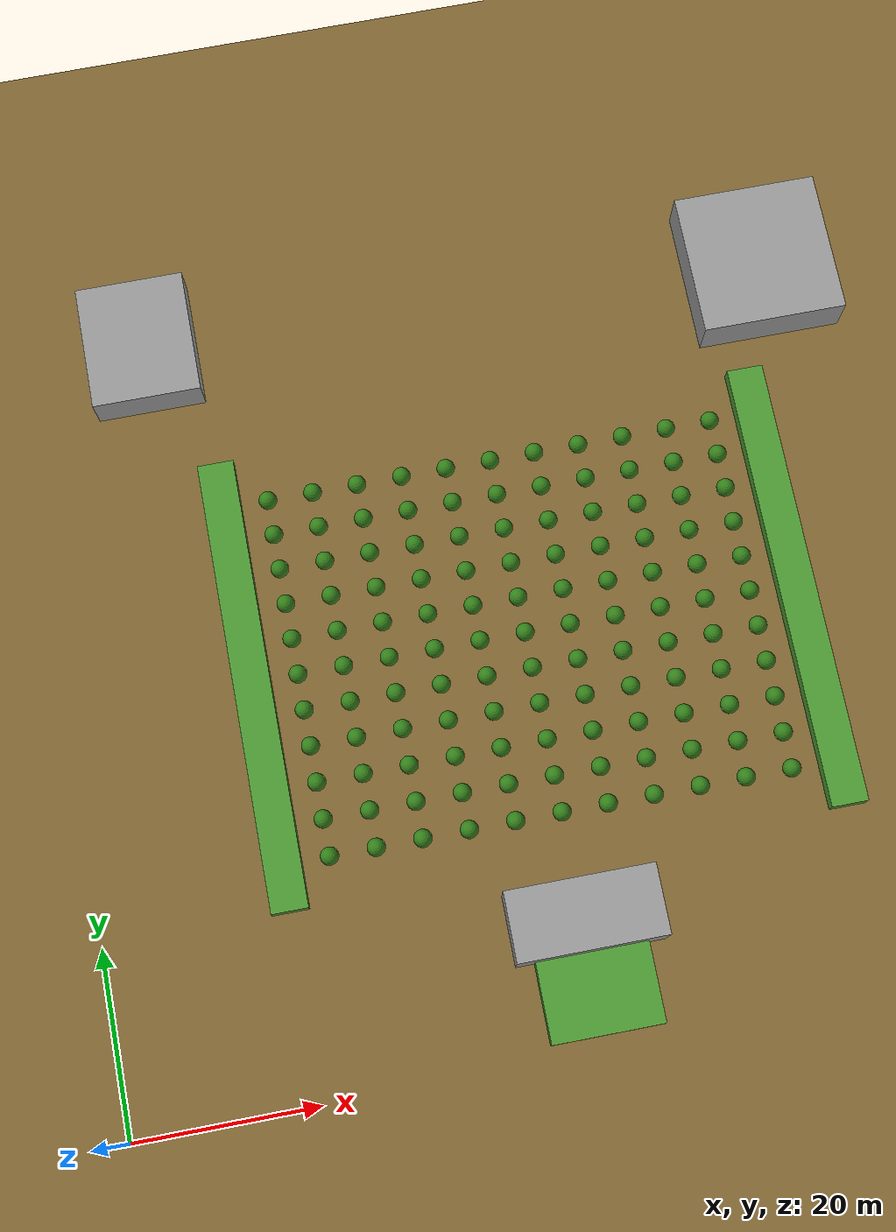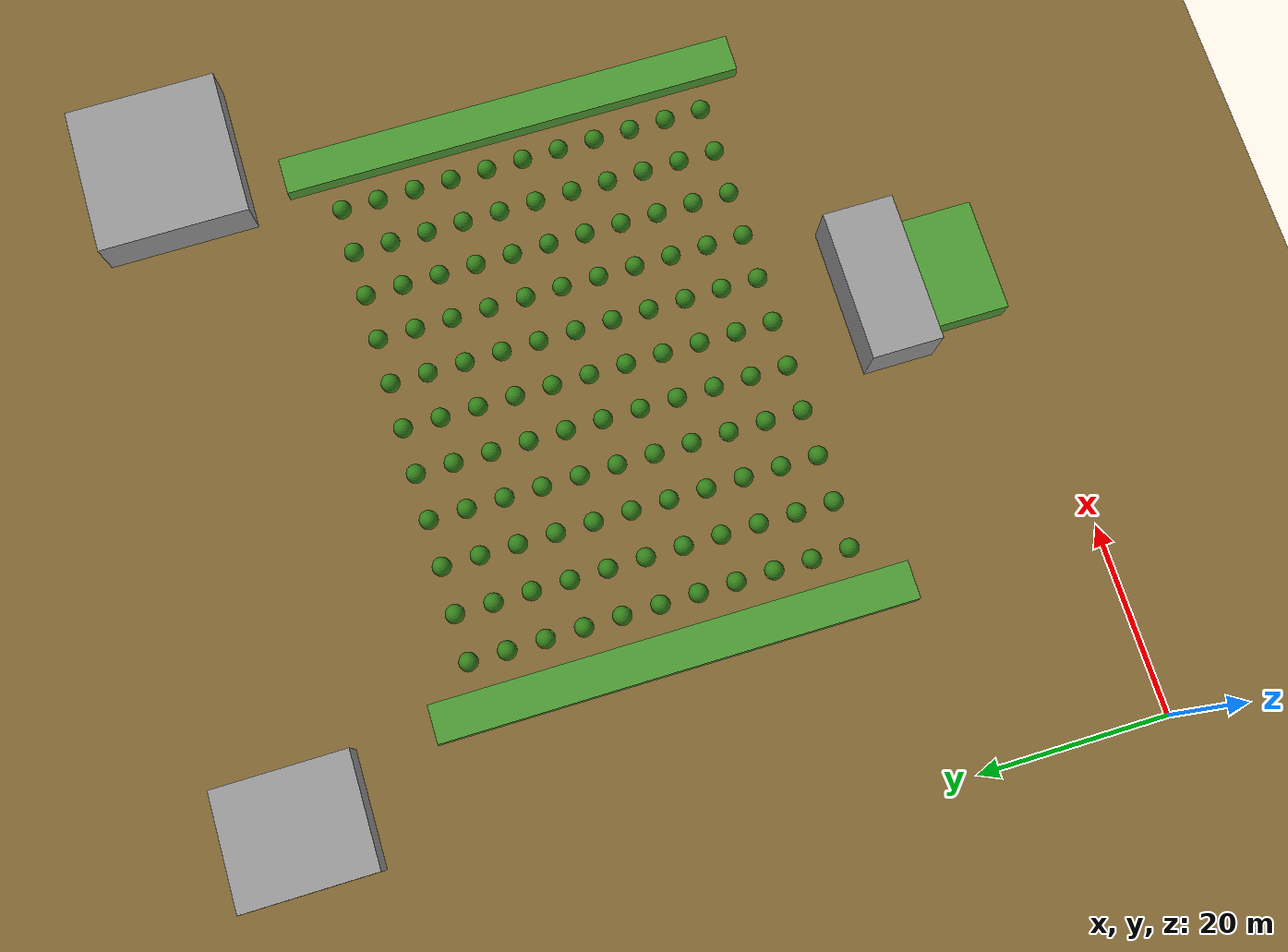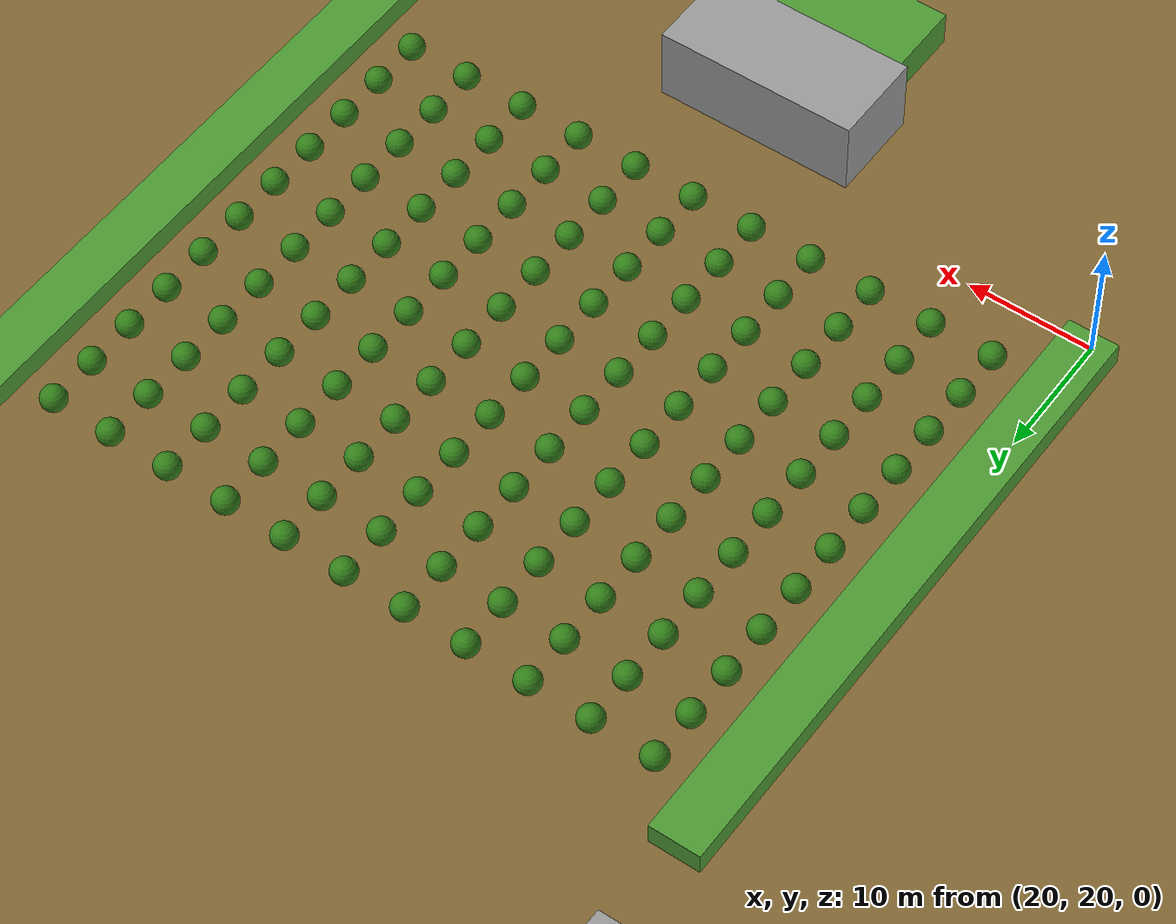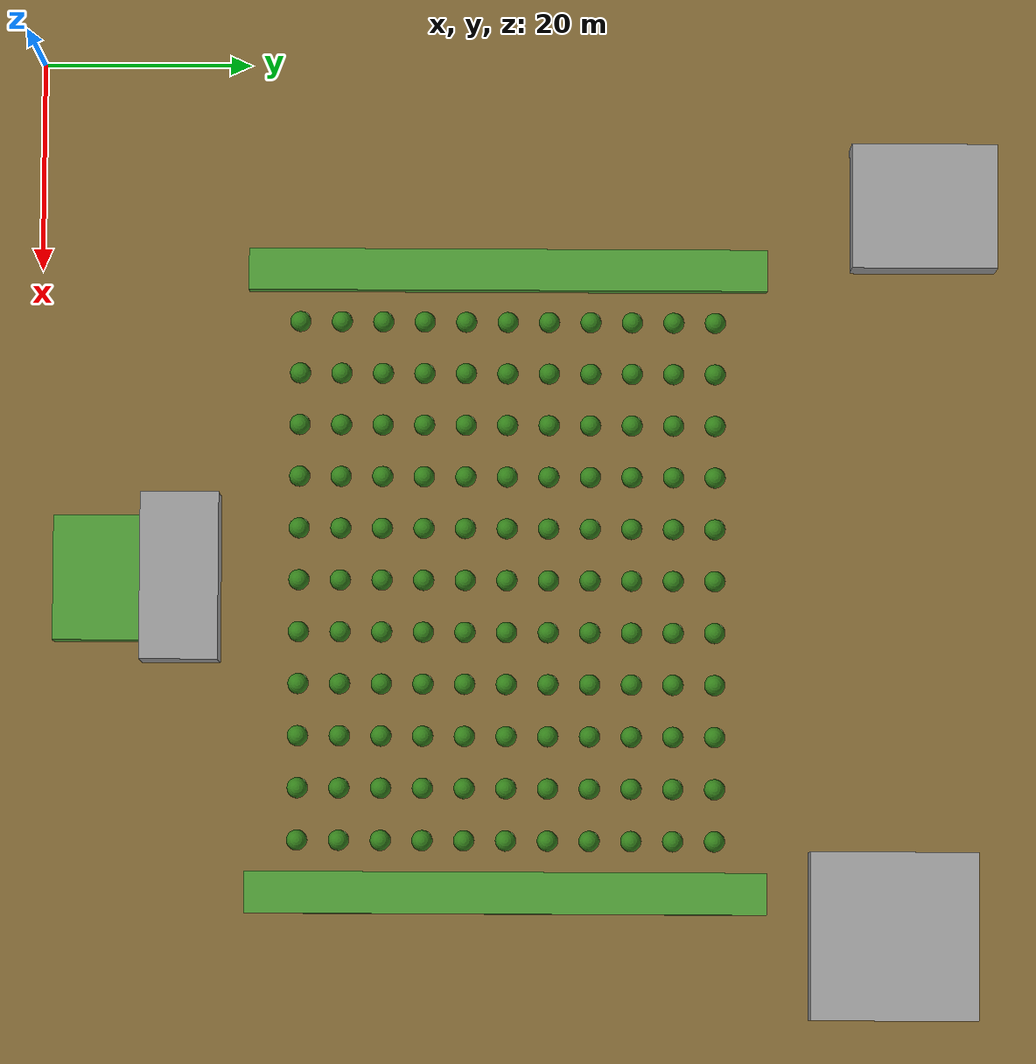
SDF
<?xml version="1.0" ?>
<sdf version="1.8">
  <world name="agriculture_world">

    <plugin filename="gz-sim-physics-system" name="gz::sim::systems::Physics"/>
    <plugin filename="gz-sim-user-commands-system" name="gz::sim::systems::UserCommands"/>
    <plugin filename="gz-sim-scene-broadcaster-system" name="gz::sim::systems::SceneBroadcaster"/>
    <plugin filename="gz-sim-sensors-system" name="gz::sim::systems::Sensors">
      <render_engine>ogre2</render_engine>
    </plugin>

    <light name="sun" type="directional">
      <cast_shadows>true</cast_shadows>
      <pose>0 0 100 0 0 0</pose>
      <diffuse>1 1 1 1</diffuse>
      <specular>0.5 0.5 0.5 1</specular>
      <direction>-0.5 0.1 -0.9</direction>
    </light>

    <model name="ground_plane">
      <static>true</static>
      <link name="link">
        <collision name="collision">
          <geometry>
            <plane><normal>0 0 1</normal><size>200 200</size></plane>
          </geometry>
        </collision>
        <visual name="visual">
          <geometry>
            <plane><normal>0 0 1</normal><size>200 200</size></plane>
          </geometry>
          <material>
            <ambient>0.5 0.4 0.2 1</ambient>
            <diffuse>0.5 0.4 0.2 1</diffuse>
          </material>
        </visual>
      </link>
    </model>

    <model name="building_0">
      <static>true</static>
      <pose>14.0 85.0 2.25 0 0 0</pose>
      <link name="link">
        <collision name="collision"><geometry><box><size>12.0 14.0 4.5</size></box></geometry></collision>
        <visual name="visual"><geometry><box><size>12.0 14.0 4.5</size></box></geometry>
          <material><ambient>0.6 0.6 0.6 1</ambient><diffuse>0.6 0.6 0.6 1</diffuse></material>
        </visual>
      </link>
    </model>

    <model name="building_1">
      <static>true</static>
      <pose>84.0 82.0 2.5 0 0 0</pose>
      <link name="link">
        <collision name="collision"><geometry><box><size>16.0 16.0 5.0</size></box></geometry></collision>
        <visual name="visual"><geometry><box><size>16.0 16.0 5.0</size></box></geometry>
          <material><ambient>0.6 0.6 0.6 1</ambient><diffuse>0.6 0.6 0.6 1</diffuse></material>
        </visual>
      </link>
    </model>

    <model name="building_2">
      <static>true</static>
      <pose>50.0 13.75 3.0 0 0 0</pose>
      <link name="link">
        <collision name="collision"><geometry><box><size>16.0 7.5 6.0</size></box></geometry></collision>
        <visual name="visual"><geometry><box><size>16.0 7.5 6.0</size></box></geometry>
          <material><ambient>0.6 0.6 0.6 1</ambient><diffuse>0.6 0.6 0.6 1</diffuse></material>
        </visual>
      </link>
    </model>

    <model name="building_3">
      <static>true</static>
      <pose>50.0 8.0 1.4 0 0 0</pose>
      <link name="link">
        <collision name="collision"><geometry><box><size>12.0 13.0 2.8</size></box></geometry></collision>
        <visual name="visual"><geometry><box><size>12.0 13.0 2.8</size></box></geometry>
          <material><ambient>0.3 0.6 0.2 1</ambient><diffuse>0.3 0.6 0.2 1</diffuse></material>
        </visual>
      </link>
    </model>

    <model name="building_4">
      <static>true</static>
      <pose>20.0 45.0 0.9 0 0 0</pose>
      <link name="link">
        <collision name="collision"><geometry><box><size>4.0 50.0 1.8</size></box></geometry></collision>
        <visual name="visual"><geometry><box><size>4.0 50.0 1.8</size></box></geometry>
          <material><ambient>0.3 0.6 0.2 1</ambient><diffuse>0.3 0.6 0.2 1</diffuse></material>
        </visual>
      </link>
    </model>

    <model name="building_5">
      <static>true</static>
      <pose>80.0 45.0 0.9 0 0 0</pose>
      <link name="link">
        <collision name="collision"><geometry><box><size>4.0 50.0 1.8</size></box></geometry></collision>
        <visual name="visual"><geometry><box><size>4.0 50.0 1.8</size></box></geometry>
          <material><ambient>0.3 0.6 0.2 1</ambient><diffuse>0.3 0.6 0.2 1</diffuse></material>
        </visual>
      </link>
    </model>

    <model name="row_1">
      <static>true</static>
      <pose>25.0 25.0 0.8 0 0 0</pose>
      <link name="b0"><pose>0 0 0 0 0 0</pose><collision name="c"><geometry><sphere><radius>1.0</radius></sphere></geometry></collision><visual name="v"><geometry><sphere><radius>1.0</radius></sphere></geometry><material><ambient>0.2 0.5 0.1 1</ambient><diffuse>0.2 0.5 0.1 1</diffuse></material></visual></link>
      <link name="b1"><pose>0 4 0 0 0 0</pose><collision name="c"><geometry><sphere><radius>1.0</radius></sphere></geometry></collision><visual name="v"><geometry><sphere><radius>1.0</radius></sphere></geometry><material><ambient>0.2 0.5 0.1 1</ambient><diffuse>0.2 0.5 0.1 1</diffuse></material></visual></link>
      <link name="b2"><pose>0 8 0 0 0 0</pose><collision name="c"><geometry><sphere><radius>1.0</radius></sphere></geometry></collision><visual name="v"><geometry><sphere><radius>1.0</radius></sphere></geometry><material><ambient>0.2 0.5 0.1 1</ambient><diffuse>0.2 0.5 0.1 1</diffuse></material></visual></link>
      <link name="b3"><pose>0 12 0 0 0 0</pose><collision name="c"><geometry><sphere><radius>1.0</radius></sphere></geometry></collision><visual name="v"><geometry><sphere><radius>1.0</radius></sphere></geometry><material><ambient>0.2 0.5 0.1 1</ambient><diffuse>0.2 0.5 0.1 1</diffuse></material></visual></link>
      <link name="b4"><pose>0 16 0 0 0 0</pose><collision name="c"><geometry><sphere><radius>1.0</radius></sphere></geometry></collision><visual name="v"><geometry><sphere><radius>1.0</radius></sphere></geometry><material><ambient>0.2 0.5 0.1 1</ambient><diffuse>0.2 0.5 0.1 1</diffuse></material></visual></link>
      <link name="b5"><pose>0 20 0 0 0 0</pose><collision name="c"><geometry><sphere><radius>1.0</radius></sphere></geometry></collision><visual name="v"><geometry><sphere><radius>1.0</radius></sphere></geometry><material><ambient>0.2 0.5 0.1 1</ambient><diffuse>0.2 0.5 0.1 1</diffuse></material></visual></link>
      <link name="b6"><pose>0 24 0 0 0 0</pose><collision name="c"><geometry><sphere><radius>1.0</radius></sphere></geometry></collision><visual name="v"><geometry><sphere><radius>1.0</radius></sphere></geometry><material><ambient>0.2 0.5 0.1 1</ambient><diffuse>0.2 0.5 0.1 1</diffuse></material></visual></link>
      <link name="b7"><pose>0 28 0 0 0 0</pose><collision name="c"><geometry><sphere><radius>1.0</radius></sphere></geometry></collision><visual name="v"><geometry><sphere><radius>1.0</radius></sphere></geometry><material><ambient>0.2 0.5 0.1 1</ambient><diffuse>0.2 0.5 0.1 1</diffuse></material></visual></link>
      <link name="b8"><pose>0 32 0 0 0 0</pose><collision name="c"><geometry><sphere><radius>1.0</radius></sphere></geometry></collision><visual name="v"><geometry><sphere><radius>1.0</radius></sphere></geometry><material><ambient>0.2 0.5 0.1 1</ambient><diffuse>0.2 0.5 0.1 1</diffuse></material></visual></link>
      <link name="b9"><pose>0 36 0 0 0 0</pose><collision name="c"><geometry><sphere><radius>1.0</radius></sphere></geometry></collision><visual name="v"><geometry><sphere><radius>1.0</radius></sphere></geometry><material><ambient>0.2 0.5 0.1 1</ambient><diffuse>0.2 0.5 0.1 1</diffuse></material></visual></link>
      <link name="b10"><pose>0 40 0 0 0 0</pose><collision name="c"><geometry><sphere><radius>1.0</radius></sphere></geometry></collision><visual name="v"><geometry><sphere><radius>1.0</radius></sphere></geometry><material><ambient>0.2 0.5 0.1 1</ambient><diffuse>0.2 0.5 0.1 1</diffuse></material></visual></link>
    </model>

    <model name="row_2">
      <static>true</static>
      <pose>30.0 25.0 0.8 0 0 0</pose>
      <link name="b0"><pose>0 0 0 0 0 0</pose><collision name="c"><geometry><sphere><radius>1.0</radius></sphere></geometry></collision><visual name="v"><geometry><sphere><radius>1.0</radius></sphere></geometry><material><ambient>0.2 0.5 0.1 1</ambient><diffuse>0.2 0.5 0.1 1</diffuse></material></visual></link>
      <link name="b1"><pose>0 4 0 0 0 0</pose><collision name="c"><geometry><sphere><radius>1.0</radius></sphere></geometry></collision><visual name="v"><geometry><sphere><radius>1.0</radius></sphere></geometry><material><ambient>0.2 0.5 0.1 1</ambient><diffuse>0.2 0.5 0.1 1</diffuse></material></visual></link>
      <link name="b2"><pose>0 8 0 0 0 0</pose><collision name="c"><geometry><sphere><radius>1.0</radius></sphere></geometry></collision><visual name="v"><geometry><sphere><radius>1.0</radius></sphere></geometry><material><ambient>0.2 0.5 0.1 1</ambient><diffuse>0.2 0.5 0.1 1</diffuse></material></visual></link>
      <link name="b3"><pose>0 12 0 0 0 0</pose><collision name="c"><geometry><sphere><radius>1.0</radius></sphere></geometry></collision><visual name="v"><geometry><sphere><radius>1.0</radius></sphere></geometry><material><ambient>0.2 0.5 0.1 1</ambient><diffuse>0.2 0.5 0.1 1</diffuse></material></visual></link>
      <link name="b4"><pose>0 16 0 0 0 0</pose><collision name="c"><geometry><sphere><radius>1.0</radius></sphere></geometry></collision><visual name="v"><geometry><sphere><radius>1.0</radius></sphere></geometry><material><ambient>0.2 0.5 0.1 1</ambient><diffuse>0.2 0.5 0.1 1</diffuse></material></visual></link>
      <link name="b5"><pose>0 20 0 0 0 0</pose><collision name="c"><geometry><sphere><radius>1.0</radius></sphere></geometry></collision><visual name="v"><geometry><sphere><radius>1.0</radius></sphere></geometry><material><ambient>0.2 0.5 0.1 1</ambient><diffuse>0.2 0.5 0.1 1</diffuse></material></visual></link>
      <link name="b6"><pose>0 24 0 0 0 0</pose><collision name="c"><geometry><sphere><radius>1.0</radius></sphere></geometry></collision><visual name="v"><geometry><sphere><radius>1.0</radius></sphere></geometry><material><ambient>0.2 0.5 0.1 1</ambient><diffuse>0.2 0.5 0.1 1</diffuse></material></visual></link>
      <link name="b7"><pose>0 28 0 0 0 0</pose><collision name="c"><geometry><sphere><radius>1.0</radius></sphere></geometry></collision><visual name="v"><geometry><sphere><radius>1.0</radius></sphere></geometry><material><ambient>0.2 0.5 0.1 1</ambient><diffuse>0.2 0.5 0.1 1</diffuse></material></visual></link>
      <link name="b8"><pose>0 32 0 0 0 0</pose><collision name="c"><geometry><sphere><radius>1.0</radius></sphere></geometry></collision><visual name="v"><geometry><sphere><radius>1.0</radius></sphere></geometry><material><ambient>0.2 0.5 0.1 1</ambient><diffuse>0.2 0.5 0.1 1</diffuse></material></visual></link>
      <link name="b9"><pose>0 36 0 0 0 0</pose><collision name="c"><geometry><sphere><radius>1.0</radius></sphere></geometry></collision><visual name="v"><geometry><sphere><radius>1.0</radius></sphere></geometry><material><ambient>0.2 0.5 0.1 1</ambient><diffuse>0.2 0.5 0.1 1</diffuse></material></visual></link>
      <link name="b10"><pose>0 40 0 0 0 0</pose><collision name="c"><geometry><sphere><radius>1.0</radius></sphere></geometry></collision><visual name="v"><geometry><sphere><radius>1.0</radius></sphere></geometry><material><ambient>0.2 0.5 0.1 1</ambient><diffuse>0.2 0.5 0.1 1</diffuse></material></visual></link>
    </model>

    <model name="row_3">
      <static>true</static>
      <pose>35.0 25.0 0.8 0 0 0</pose>
      <link name="b0"><pose>0 0 0 0 0 0</pose><collision name="c"><geometry><sphere><radius>1.0</radius></sphere></geometry></collision><visual name="v"><geometry><sphere><radius>1.0</radius></sphere></geometry><material><ambient>0.2 0.5 0.1 1</ambient><diffuse>0.2 0.5 0.1 1</diffuse></material></visual></link>
      <link name="b1"><pose>0 4 0 0 0 0</pose><collision name="c"><geometry><sphere><radius>1.0</radius></sphere></geometry></collision><visual name="v"><geometry><sphere><radius>1.0</radius></sphere></geometry><material><ambient>0.2 0.5 0.1 1</ambient><diffuse>0.2 0.5 0.1 1</diffuse></material></visual></link>
      <link name="b2"><pose>0 8 0 0 0 0</pose><collision name="c"><geometry><sphere><radius>1.0</radius></sphere></geometry></collision><visual name="v"><geometry><sphere><radius>1.0</radius></sphere></geometry><material><ambient>0.2 0.5 0.1 1</ambient><diffuse>0.2 0.5 0.1 1</diffuse></material></visual></link>
      <link name="b3"><pose>0 12 0 0 0 0</pose><collision name="c"><geometry><sphere><radius>1.0</radius></sphere></geometry></collision><visual name="v"><geometry><sphere><radius>1.0</radius></sphere></geometry><material><ambient>0.2 0.5 0.1 1</ambient><diffuse>0.2 0.5 0.1 1</diffuse></material></visual></link>
      <link name="b4"><pose>0 16 0 0 0 0</pose><collision name="c"><geometry><sphere><radius>1.0</radius></sphere></geometry></collision><visual name="v"><geometry><sphere><radius>1.0</radius></sphere></geometry><material><ambient>0.2 0.5 0.1 1</ambient><diffuse>0.2 0.5 0.1 1</diffuse></material></visual></link>
      <link name="b5"><pose>0 20 0 0 0 0</pose><collision name="c"><geometry><sphere><radius>1.0</radius></sphere></geometry></collision><visual name="v"><geometry><sphere><radius>1.0</radius></sphere></geometry><material><ambient>0.2 0.5 0.1 1</ambient><diffuse>0.2 0.5 0.1 1</diffuse></material></visual></link>
      <link name="b6"><pose>0 24 0 0 0 0</pose><collision name="c"><geometry><sphere><radius>1.0</radius></sphere></geometry></collision><visual name="v"><geometry><sphere><radius>1.0</radius></sphere></geometry><material><ambient>0.2 0.5 0.1 1</ambient><diffuse>0.2 0.5 0.1 1</diffuse></material></visual></link>
      <link name="b7"><pose>0 28 0 0 0 0</pose><collision name="c"><geometry><sphere><radius>1.0</radius></sphere></geometry></collision><visual name="v"><geometry><sphere><radius>1.0</radius></sphere></geometry><material><ambient>0.2 0.5 0.1 1</ambient><diffuse>0.2 0.5 0.1 1</diffuse></material></visual></link>
      <link name="b8"><pose>0 32 0 0 0 0</pose><collision name="c"><geometry><sphere><radius>1.0</radius></sphere></geometry></collision><visual name="v"><geometry><sphere><radius>1.0</radius></sphere></geometry><material><ambient>0.2 0.5 0.1 1</ambient><diffuse>0.2 0.5 0.1 1</diffuse></material></visual></link>
      <link name="b9"><pose>0 36 0 0 0 0</pose><collision name="c"><geometry><sphere><radius>1.0</radius></sphere></geometry></collision><visual name="v"><geometry><sphere><radius>1.0</radius></sphere></geometry><material><ambient>0.2 0.5 0.1 1</ambient><diffuse>0.2 0.5 0.1 1</diffuse></material></visual></link>
      <link name="b10"><pose>0 40 0 0 0 0</pose><collision name="c"><geometry><sphere><radius>1.0</radius></sphere></geometry></collision><visual name="v"><geometry><sphere><radius>1.0</radius></sphere></geometry><material><ambient>0.2 0.5 0.1 1</ambient><diffuse>0.2 0.5 0.1 1</diffuse></material></visual></link>
    </model>

    <model name="row_4">
      <static>true</static>
      <pose>40.0 25.0 0.8 0 0 0</pose>
      <link name="b0"><pose>0 0 0 0 0 0</pose><collision name="c"><geometry><sphere><radius>1.0</radius></sphere></geometry></collision><visual name="v"><geometry><sphere><radius>1.0</radius></sphere></geometry><material><ambient>0.2 0.5 0.1 1</ambient><diffuse>0.2 0.5 0.1 1</diffuse></material></visual></link>
      <link name="b1"><pose>0 4 0 0 0 0</pose><collision name="c"><geometry><sphere><radius>1.0</radius></sphere></geometry></collision><visual name="v"><geometry><sphere><radius>1.0</radius></sphere></geometry><material><ambient>0.2 0.5 0.1 1</ambient><diffuse>0.2 0.5 0.1 1</diffuse></material></visual></link>
      <link name="b2"><pose>0 8 0 0 0 0</pose><collision name="c"><geometry><sphere><radius>1.0</radius></sphere></geometry></collision><visual name="v"><geometry><sphere><radius>1.0</radius></sphere></geometry><material><ambient>0.2 0.5 0.1 1</ambient><diffuse>0.2 0.5 0.1 1</diffuse></material></visual></link>
      <link name="b3"><pose>0 12 0 0 0 0</pose><collision name="c"><geometry><sphere><radius>1.0</radius></sphere></geometry></collision><visual name="v"><geometry><sphere><radius>1.0</radius></sphere></geometry><material><ambient>0.2 0.5 0.1 1</ambient><diffuse>0.2 0.5 0.1 1</diffuse></material></visual></link>
      <link name="b4"><pose>0 16 0 0 0 0</pose><collision name="c"><geometry><sphere><radius>1.0</radius></sphere></geometry></collision><visual name="v"><geometry><sphere><radius>1.0</radius></sphere></geometry><material><ambient>0.2 0.5 0.1 1</ambient><diffuse>0.2 0.5 0.1 1</diffuse></material></visual></link>
      <link name="b5"><pose>0 20 0 0 0 0</pose><collision name="c"><geometry><sphere><radius>1.0</radius></sphere></geometry></collision><visual name="v"><geometry><sphere><radius>1.0</radius></sphere></geometry><material><ambient>0.2 0.5 0.1 1</ambient><diffuse>0.2 0.5 0.1 1</diffuse></material></visual></link>
      <link name="b6"><pose>0 24 0 0 0 0</pose><collision name="c"><geometry><sphere><radius>1.0</radius></sphere></geometry></collision><visual name="v"><geometry><sphere><radius>1.0</radius></sphere></geometry><material><ambient>0.2 0.5 0.1 1</ambient><diffuse>0.2 0.5 0.1 1</diffuse></material></visual></link>
      <link name="b7"><pose>0 28 0 0 0 0</pose><collision name="c"><geometry><sphere><radius>1.0</radius></sphere></geometry></collision><visual name="v"><geometry><sphere><radius>1.0</radius></sphere></geometry><material><ambient>0.2 0.5 0.1 1</ambient><diffuse>0.2 0.5 0.1 1</diffuse></material></visual></link>
      <link name="b8"><pose>0 32 0 0 0 0</pose><collision name="c"><geometry><sphere><radius>1.0</radius></sphere></geometry></collision><visual name="v"><geometry><sphere><radius>1.0</radius></sphere></geometry><material><ambient>0.2 0.5 0.1 1</ambient><diffuse>0.2 0.5 0.1 1</diffuse></material></visual></link>
      <link name="b9"><pose>0 36 0 0 0 0</pose><collision name="c"><geometry><sphere><radius>1.0</radius></sphere></geometry></collision><visual name="v"><geometry><sphere><radius>1.0</radius></sphere></geometry><material><ambient>0.2 0.5 0.1 1</ambient><diffuse>0.2 0.5 0.1 1</diffuse></material></visual></link>
      <link name="b10"><pose>0 40 0 0 0 0</pose><collision name="c"><geometry><sphere><radius>1.0</radius></sphere></geometry></collision><visual name="v"><geometry><sphere><radius>1.0</radius></sphere></geometry><material><ambient>0.2 0.5 0.1 1</ambient><diffuse>0.2 0.5 0.1 1</diffuse></material></visual></link>
    </model>

    <model name="row_5">
      <static>true</static>
      <pose>45.0 25.0 0.8 0 0 0</pose>
      <link name="b0"><pose>0 0 0 0 0 0</pose><collision name="c"><geometry><sphere><radius>1.0</radius></sphere></geometry></collision><visual name="v"><geometry><sphere><radius>1.0</radius></sphere></geometry><material><ambient>0.2 0.5 0.1 1</ambient><diffuse>0.2 0.5 0.1 1</diffuse></material></visual></link>
      <link name="b1"><pose>0 4 0 0 0 0</pose><collision name="c"><geometry><sphere><radius>1.0</radius></sphere></geometry></collision><visual name="v"><geometry><sphere><radius>1.0</radius></sphere></geometry><material><ambient>0.2 0.5 0.1 1</ambient><diffuse>0.2 0.5 0.1 1</diffuse></material></visual></link>
      <link name="b2"><pose>0 8 0 0 0 0</pose><collision name="c"><geometry><sphere><radius>1.0</radius></sphere></geometry></collision><visual name="v"><geometry><sphere><radius>1.0</radius></sphere></geometry><material><ambient>0.2 0.5 0.1 1</ambient><diffuse>0.2 0.5 0.1 1</diffuse></material></visual></link>
      <link name="b3"><pose>0 12 0 0 0 0</pose><collision name="c"><geometry><sphere><radius>1.0</radius></sphere></geometry></collision><visual name="v"><geometry><sphere><radius>1.0</radius></sphere></geometry><material><ambient>0.2 0.5 0.1 1</ambient><diffuse>0.2 0.5 0.1 1</diffuse></material></visual></link>
      <link name="b4"><pose>0 16 0 0 0 0</pose><collision name="c"><geometry><sphere><radius>1.0</radius></sphere></geometry></collision><visual name="v"><geometry><sphere><radius>1.0</radius></sphere></geometry><material><ambient>0.2 0.5 0.1 1</ambient><diffuse>0.2 0.5 0.1 1</diffuse></material></visual></link>
      <link name="b5"><pose>0 20 0 0 0 0</pose><collision name="c"><geometry><sphere><radius>1.0</radius></sphere></geometry></collision><visual name="v"><geometry><sphere><radius>1.0</radius></sphere></geometry><material><ambient>0.2 0.5 0.1 1</ambient><diffuse>0.2 0.5 0.1 1</diffuse></material></visual></link>
      <link name="b6"><pose>0 24 0 0 0 0</pose><collision name="c"><geometry><sphere><radius>1.0</radius></sphere></geometry></collision><visual name="v"><geometry><sphere><radius>1.0</radius></sphere></geometry><material><ambient>0.2 0.5 0.1 1</ambient><diffuse>0.2 0.5 0.1 1</diffuse></material></visual></link>
      <link name="b7"><pose>0 28 0 0 0 0</pose><collision name="c"><geometry><sphere><radius>1.0</radius></sphere></geometry></collision><visual name="v"><geometry><sphere><radius>1.0</radius></sphere></geometry><material><ambient>0.2 0.5 0.1 1</ambient><diffuse>0.2 0.5 0.1 1</diffuse></material></visual></link>
      <link name="b8"><pose>0 32 0 0 0 0</pose><collision name="c"><geometry><sphere><radius>1.0</radius></sphere></geometry></collision><visual name="v"><geometry><sphere><radius>1.0</radius></sphere></geometry><material><ambient>0.2 0.5 0.1 1</ambient><diffuse>0.2 0.5 0.1 1</diffuse></material></visual></link>
      <link name="b9"><pose>0 36 0 0 0 0</pose><collision name="c"><geometry><sphere><radius>1.0</radius></sphere></geometry></collision><visual name="v"><geometry><sphere><radius>1.0</radius></sphere></geometry><material><ambient>0.2 0.5 0.1 1</ambient><diffuse>0.2 0.5 0.1 1</diffuse></material></visual></link>
      <link name="b10"><pose>0 40 0 0 0 0</pose><collision name="c"><geometry><sphere><radius>1.0</radius></sphere></geometry></collision><visual name="v"><geometry><sphere><radius>1.0</radius></sphere></geometry><material><ambient>0.2 0.5 0.1 1</ambient><diffuse>0.2 0.5 0.1 1</diffuse></material></visual></link>
    </model>

    <model name="row_6">
      <static>true</static>
      <pose>50.0 25.0 0.8 0 0 0</pose>
      <link name="b0"><pose>0 0 0 0 0 0</pose><collision name="c"><geometry><sphere><radius>1.0</radius></sphere></geometry></collision><visual name="v"><geometry><sphere><radius>1.0</radius></sphere></geometry><material><ambient>0.2 0.5 0.1 1</ambient><diffuse>0.2 0.5 0.1 1</diffuse></material></visual></link>
      <link name="b1"><pose>0 4 0 0 0 0</pose><collision name="c"><geometry><sphere><radius>1.0</radius></sphere></geometry></collision><visual name="v"><geometry><sphere><radius>1.0</radius></sphere></geometry><material><ambient>0.2 0.5 0.1 1</ambient><diffuse>0.2 0.5 0.1 1</diffuse></material></visual></link>
      <link name="b2"><pose>0 8 0 0 0 0</pose><collision name="c"><geometry><sphere><radius>1.0</radius></sphere></geometry></collision><visual name="v"><geometry><sphere><radius>1.0</radius></sphere></geometry><material><ambient>0.2 0.5 0.1 1</ambient><diffuse>0.2 0.5 0.1 1</diffuse></material></visual></link>
      <link name="b3"><pose>0 12 0 0 0 0</pose><collision name="c"><geometry><sphere><radius>1.0</radius></sphere></geometry></collision><visual name="v"><geometry><sphere><radius>1.0</radius></sphere></geometry><material><ambient>0.2 0.5 0.1 1</ambient><diffuse>0.2 0.5 0.1 1</diffuse></material></visual></link>
      <link name="b4"><pose>0 16 0 0 0 0</pose><collision name="c"><geometry><sphere><radius>1.0</radius></sphere></geometry></collision><visual name="v"><geometry><sphere><radius>1.0</radius></sphere></geometry><material><ambient>0.2 0.5 0.1 1</ambient><diffuse>0.2 0.5 0.1 1</diffuse></material></visual></link>
      <link name="b5"><pose>0 20 0 0 0 0</pose><collision name="c"><geometry><sphere><radius>1.0</radius></sphere></geometry></collision><visual name="v"><geometry><sphere><radius>1.0</radius></sphere></geometry><material><ambient>0.2 0.5 0.1 1</ambient><diffuse>0.2 0.5 0.1 1</diffuse></material></visual></link>
      <link name="b6"><pose>0 24 0 0 0 0</pose><collision name="c"><geometry><sphere><radius>1.0</radius></sphere></geometry></collision><visual name="v"><geometry><sphere><radius>1.0</radius></sphere></geometry><material><ambient>0.2 0.5 0.1 1</ambient><diffuse>0.2 0.5 0.1 1</diffuse></material></visual></link>
      <link name="b7"><pose>0 28 0 0 0 0</pose><collision name="c"><geometry><sphere><radius>1.0</radius></sphere></geometry></collision><visual name="v"><geometry><sphere><radius>1.0</radius></sphere></geometry><material><ambient>0.2 0.5 0.1 1</ambient><diffuse>0.2 0.5 0.1 1</diffuse></material></visual></link>
      <link name="b8"><pose>0 32 0 0 0 0</pose><collision name="c"><geometry><sphere><radius>1.0</radius></sphere></geometry></collision><visual name="v"><geometry><sphere><radius>1.0</radius></sphere></geometry><material><ambient>0.2 0.5 0.1 1</ambient><diffuse>0.2 0.5 0.1 1</diffuse></material></visual></link>
      <link name="b9"><pose>0 36 0 0 0 0</pose><collision name="c"><geometry><sphere><radius>1.0</radius></sphere></geometry></collision><visual name="v"><geometry><sphere><radius>1.0</radius></sphere></geometry><material><ambient>0.2 0.5 0.1 1</ambient><diffuse>0.2 0.5 0.1 1</diffuse></material></visual></link>
      <link name="b10"><pose>0 40 0 0 0 0</pose><collision name="c"><geometry><sphere><radius>1.0</radius></sphere></geometry></collision><visual name="v"><geometry><sphere><radius>1.0</radius></sphere></geometry><material><ambient>0.2 0.5 0.1 1</ambient><diffuse>0.2 0.5 0.1 1</diffuse></material></visual></link>
    </model>

    <model name="row_7">
      <static>true</static>
      <pose>55.0 25.0 0.8 0 0 0</pose>
      <link name="b0"><pose>0 0 0 0 0 0</pose><collision name="c"><geometry><sphere><radius>1.0</radius></sphere></geometry></collision><visual name="v"><geometry><sphere><radius>1.0</radius></sphere></geometry><material><ambient>0.2 0.5 0.1 1</ambient><diffuse>0.2 0.5 0.1 1</diffuse></material></visual></link>
      <link name="b1"><pose>0 4 0 0 0 0</pose><collision name="c"><geometry><sphere><radius>1.0</radius></sphere></geometry></collision><visual name="v"><geometry><sphere><radius>1.0</radius></sphere></geometry><material><ambient>0.2 0.5 0.1 1</ambient><diffuse>0.2 0.5 0.1 1</diffuse></material></visual></link>
      <link name="b2"><pose>0 8 0 0 0 0</pose><collision name="c"><geometry><sphere><radius>1.0</radius></sphere></geometry></collision><visual name="v"><geometry><sphere><radius>1.0</radius></sphere></geometry><material><ambient>0.2 0.5 0.1 1</ambient><diffuse>0.2 0.5 0.1 1</diffuse></material></visual></link>
      <link name="b3"><pose>0 12 0 0 0 0</pose><collision name="c"><geometry><sphere><radius>1.0</radius></sphere></geometry></collision><visual name="v"><geometry><sphere><radius>1.0</radius></sphere></geometry><material><ambient>0.2 0.5 0.1 1</ambient><diffuse>0.2 0.5 0.1 1</diffuse></material></visual></link>
      <link name="b4"><pose>0 16 0 0 0 0</pose><collision name="c"><geometry><sphere><radius>1.0</radius></sphere></geometry></collision><visual name="v"><geometry><sphere><radius>1.0</radius></sphere></geometry><material><ambient>0.2 0.5 0.1 1</ambient><diffuse>0.2 0.5 0.1 1</diffuse></material></visual></link>
      <link name="b5"><pose>0 20 0 0 0 0</pose><collision name="c"><geometry><sphere><radius>1.0</radius></sphere></geometry></collision><visual name="v"><geometry><sphere><radius>1.0</radius></sphere></geometry><material><ambient>0.2 0.5 0.1 1</ambient><diffuse>0.2 0.5 0.1 1</diffuse></material></visual></link>
      <link name="b6"><pose>0 24 0 0 0 0</pose><collision name="c"><geometry><sphere><radius>1.0</radius></sphere></geometry></collision><visual name="v"><geometry><sphere><radius>1.0</radius></sphere></geometry><material><ambient>0.2 0.5 0.1 1</ambient><diffuse>0.2 0.5 0.1 1</diffuse></material></visual></link>
      <link name="b7"><pose>0 28 0 0 0 0</pose><collision name="c"><geometry><sphere><radius>1.0</radius></sphere></geometry></collision><visual name="v"><geometry><sphere><radius>1.0</radius></sphere></geometry><material><ambient>0.2 0.5 0.1 1</ambient><diffuse>0.2 0.5 0.1 1</diffuse></material></visual></link>
      <link name="b8"><pose>0 32 0 0 0 0</pose><collision name="c"><geometry><sphere><radius>1.0</radius></sphere></geometry></collision><visual name="v"><geometry><sphere><radius>1.0</radius></sphere></geometry><material><ambient>0.2 0.5 0.1 1</ambient><diffuse>0.2 0.5 0.1 1</diffuse></material></visual></link>
      <link name="b9"><pose>0 36 0 0 0 0</pose><collision name="c"><geometry><sphere><radius>1.0</radius></sphere></geometry></collision><visual name="v"><geometry><sphere><radius>1.0</radius></sphere></geometry><material><ambient>0.2 0.5 0.1 1</ambient><diffuse>0.2 0.5 0.1 1</diffuse></material></visual></link>
      <link name="b10"><pose>0 40 0 0 0 0</pose><collision name="c"><geometry><sphere><radius>1.0</radius></sphere></geometry></collision><visual name="v"><geometry><sphere><radius>1.0</radius></sphere></geometry><material><ambient>0.2 0.5 0.1 1</ambient><diffuse>0.2 0.5 0.1 1</diffuse></material></visual></link>
    </model>

    <model name="row_8">
      <static>true</static>
      <pose>60.0 25.0 0.8 0 0 0</pose>
      <link name="b0"><pose>0 0 0 0 0 0</pose><collision name="c"><geometry><sphere><radius>1.0</radius></sphere></geometry></collision><visual name="v"><geometry><sphere><radius>1.0</radius></sphere></geometry><material><ambient>0.2 0.5 0.1 1</ambient><diffuse>0.2 0.5 0.1 1</diffuse></material></visual></link>
      <link name="b1"><pose>0 4 0 0 0 0</pose><collision name="c"><geometry><sphere><radius>1.0</radius></sphere></geometry></collision><visual name="v"><geometry><sphere><radius>1.0</radius></sphere></geometry><material><ambient>0.2 0.5 0.1 1</ambient><diffuse>0.2 0.5 0.1 1</diffuse></material></visual></link>
      <link name="b2"><pose>0 8 0 0 0 0</pose><collision name="c"><geometry><sphere><radius>1.0</radius></sphere></geometry></collision><visual name="v"><geometry><sphere><radius>1.0</radius></sphere></geometry><material><ambient>0.2 0.5 0.1 1</ambient><diffuse>0.2 0.5 0.1 1</diffuse></material></visual></link>
      <link name="b3"><pose>0 12 0 0 0 0</pose><collision name="c"><geometry><sphere><radius>1.0</radius></sphere></geometry></collision><visual name="v"><geometry><sphere><radius>1.0</radius></sphere></geometry><material><ambient>0.2 0.5 0.1 1</ambient><diffuse>0.2 0.5 0.1 1</diffuse></material></visual></link>
      <link name="b4"><pose>0 16 0 0 0 0</pose><collision name="c"><geometry><sphere><radius>1.0</radius></sphere></geometry></collision><visual name="v"><geometry><sphere><radius>1.0</radius></sphere></geometry><material><ambient>0.2 0.5 0.1 1</ambient><diffuse>0.2 0.5 0.1 1</diffuse></material></visual></link>
      <link name="b5"><pose>0 20 0 0 0 0</pose><collision name="c"><geometry><sphere><radius>1.0</radius></sphere></geometry></collision><visual name="v"><geometry><sphere><radius>1.0</radius></sphere></geometry><material><ambient>0.2 0.5 0.1 1</ambient><diffuse>0.2 0.5 0.1 1</diffuse></material></visual></link>
      <link name="b6"><pose>0 24 0 0 0 0</pose><collision name="c"><geometry><sphere><radius>1.0</radius></sphere></geometry></collision><visual name="v"><geometry><sphere><radius>1.0</radius></sphere></geometry><material><ambient>0.2 0.5 0.1 1</ambient><diffuse>0.2 0.5 0.1 1</diffuse></material></visual></link>
      <link name="b7"><pose>0 28 0 0 0 0</pose><collision name="c"><geometry><sphere><radius>1.0</radius></sphere></geometry></collision><visual name="v"><geometry><sphere><radius>1.0</radius></sphere></geometry><material><ambient>0.2 0.5 0.1 1</ambient><diffuse>0.2 0.5 0.1 1</diffuse></material></visual></link>
      <link name="b8"><pose>0 32 0 0 0 0</pose><collision name="c"><geometry><sphere><radius>1.0</radius></sphere></geometry></collision><visual name="v"><geometry><sphere><radius>1.0</radius></sphere></geometry><material><ambient>0.2 0.5 0.1 1</ambient><diffuse>0.2 0.5 0.1 1</diffuse></material></visual></link>
      <link name="b9"><pose>0 36 0 0 0 0</pose><collision name="c"><geometry><sphere><radius>1.0</radius></sphere></geometry></collision><visual name="v"><geometry><sphere><radius>1.0</radius></sphere></geometry><material><ambient>0.2 0.5 0.1 1</ambient><diffuse>0.2 0.5 0.1 1</diffuse></material></visual></link>
      <link name="b10"><pose>0 40 0 0 0 0</pose><collision name="c"><geometry><sphere><radius>1.0</radius></sphere></geometry></collision><visual name="v"><geometry><sphere><radius>1.0</radius></sphere></geometry><material><ambient>0.2 0.5 0.1 1</ambient><diffuse>0.2 0.5 0.1 1</diffuse></material></visual></link>
    </model>

    <model name="row_9">
      <static>true</static>
      <pose>65.0 25.0 0.8 0 0 0</pose>
      <link name="b0"><pose>0 0 0 0 0 0</pose><collision name="c"><geometry><sphere><radius>1.0</radius></sphere></geometry></collision><visual name="v"><geometry><sphere><radius>1.0</radius></sphere></geometry><material><ambient>0.2 0.5 0.1 1</ambient><diffuse>0.2 0.5 0.1 1</diffuse></material></visual></link>
      <link name="b1"><pose>0 4 0 0 0 0</pose><collision name="c"><geometry><sphere><radius>1.0</radius></sphere></geometry></collision><visual name="v"><geometry><sphere><radius>1.0</radius></sphere></geometry><material><ambient>0.2 0.5 0.1 1</ambient><diffuse>0.2 0.5 0.1 1</diffuse></material></visual></link>
      <link name="b2"><pose>0 8 0 0 0 0</pose><collision name="c"><geometry><sphere><radius>1.0</radius></sphere></geometry></collision><visual name="v"><geometry><sphere><radius>1.0</radius></sphere></geometry><material><ambient>0.2 0.5 0.1 1</ambient><diffuse>0.2 0.5 0.1 1</diffuse></material></visual></link>
      <link name="b3"><pose>0 12 0 0 0 0</pose><collision name="c"><geometry><sphere><radius>1.0</radius></sphere></geometry></collision><visual name="v"><geometry><sphere><radius>1.0</radius></sphere></geometry><material><ambient>0.2 0.5 0.1 1</ambient><diffuse>0.2 0.5 0.1 1</diffuse></material></visual></link>
      <link name="b4"><pose>0 16 0 0 0 0</pose><collision name="c"><geometry><sphere><radius>1.0</radius></sphere></geometry></collision><visual name="v"><geometry><sphere><radius>1.0</radius></sphere></geometry><material><ambient>0.2 0.5 0.1 1</ambient><diffuse>0.2 0.5 0.1 1</diffuse></material></visual></link>
      <link name="b5"><pose>0 20 0 0 0 0</pose><collision name="c"><geometry><sphere><radius>1.0</radius></sphere></geometry></collision><visual name="v"><geometry><sphere><radius>1.0</radius></sphere></geometry><material><ambient>0.2 0.5 0.1 1</ambient><diffuse>0.2 0.5 0.1 1</diffuse></material></visual></link>
      <link name="b6"><pose>0 24 0 0 0 0</pose><collision name="c"><geometry><sphere><radius>1.0</radius></sphere></geometry></collision><visual name="v"><geometry><sphere><radius>1.0</radius></sphere></geometry><material><ambient>0.2 0.5 0.1 1</ambient><diffuse>0.2 0.5 0.1 1</diffuse></material></visual></link>
      <link name="b7"><pose>0 28 0 0 0 0</pose><collision name="c"><geometry><sphere><radius>1.0</radius></sphere></geometry></collision><visual name="v"><geometry><sphere><radius>1.0</radius></sphere></geometry><material><ambient>0.2 0.5 0.1 1</ambient><diffuse>0.2 0.5 0.1 1</diffuse></material></visual></link>
      <link name="b8"><pose>0 32 0 0 0 0</pose><collision name="c"><geometry><sphere><radius>1.0</radius></sphere></geometry></collision><visual name="v"><geometry><sphere><radius>1.0</radius></sphere></geometry><material><ambient>0.2 0.5 0.1 1</ambient><diffuse>0.2 0.5 0.1 1</diffuse></material></visual></link>
      <link name="b9"><pose>0 36 0 0 0 0</pose><collision name="c"><geometry><sphere><radius>1.0</radius></sphere></geometry></collision><visual name="v"><geometry><sphere><radius>1.0</radius></sphere></geometry><material><ambient>0.2 0.5 0.1 1</ambient><diffuse>0.2 0.5 0.1 1</diffuse></material></visual></link>
      <link name="b10"><pose>0 40 0 0 0 0</pose><collision name="c"><geometry><sphere><radius>1.0</radius></sphere></geometry></collision><visual name="v"><geometry><sphere><radius>1.0</radius></sphere></geometry><material><ambient>0.2 0.5 0.1 1</ambient><diffuse>0.2 0.5 0.1 1</diffuse></material></visual></link>
    </model>

    <model name="row_10">
      <static>true</static>
      <pose>70.0 25.0 0.8 0 0 0</pose>
      <link name="b0"><pose>0 0 0 0 0 0</pose><collision name="c"><geometry><sphere><radius>1.0</radius></sphere></geometry></collision><visual name="v"><geometry><sphere><radius>1.0</radius></sphere></geometry><material><ambient>0.2 0.5 0.1 1</ambient><diffuse>0.2 0.5 0.1 1</diffuse></material></visual></link>
      <link name="b1"><pose>0 4 0 0 0 0</pose><collision name="c"><geometry><sphere><radius>1.0</radius></sphere></geometry></collision><visual name="v"><geometry><sphere><radius>1.0</radius></sphere></geometry><material><ambient>0.2 0.5 0.1 1</ambient><diffuse>0.2 0.5 0.1 1</diffuse></material></visual></link>
      <link name="b2"><pose>0 8 0 0 0 0</pose><collision name="c"><geometry><sphere><radius>1.0</radius></sphere></geometry></collision><visual name="v"><geometry><sphere><radius>1.0</radius></sphere></geometry><material><ambient>0.2 0.5 0.1 1</ambient><diffuse>0.2 0.5 0.1 1</diffuse></material></visual></link>
      <link name="b3"><pose>0 12 0 0 0 0</pose><collision name="c"><geometry><sphere><radius>1.0</radius></sphere></geometry></collision><visual name="v"><geometry><sphere><radius>1.0</radius></sphere></geometry><material><ambient>0.2 0.5 0.1 1</ambient><diffuse>0.2 0.5 0.1 1</diffuse></material></visual></link>
      <link name="b4"><pose>0 16 0 0 0 0</pose><collision name="c"><geometry><sphere><radius>1.0</radius></sphere></geometry></collision><visual name="v"><geometry><sphere><radius>1.0</radius></sphere></geometry><material><ambient>0.2 0.5 0.1 1</ambient><diffuse>0.2 0.5 0.1 1</diffuse></material></visual></link>
      <link name="b5"><pose>0 20 0 0 0 0</pose><collision name="c"><geometry><sphere><radius>1.0</radius></sphere></geometry></collision><visual name="v"><geometry><sphere><radius>1.0</radius></sphere></geometry><material><ambient>0.2 0.5 0.1 1</ambient><diffuse>0.2 0.5 0.1 1</diffuse></material></visual></link>
      <link name="b6"><pose>0 24 0 0 0 0</pose><collision name="c"><geometry><sphere><radius>1.0</radius></sphere></geometry></collision><visual name="v"><geometry><sphere><radius>1.0</radius></sphere></geometry><material><ambient>0.2 0.5 0.1 1</ambient><diffuse>0.2 0.5 0.1 1</diffuse></material></visual></link>
      <link name="b7"><pose>0 28 0 0 0 0</pose><collision name="c"><geometry><sphere><radius>1.0</radius></sphere></geometry></collision><visual name="v"><geometry><sphere><radius>1.0</radius></sphere></geometry><material><ambient>0.2 0.5 0.1 1</ambient><diffuse>0.2 0.5 0.1 1</diffuse></material></visual></link>
      <link name="b8"><pose>0 32 0 0 0 0</pose><collision name="c"><geometry><sphere><radius>1.0</radius></sphere></geometry></collision><visual name="v"><geometry><sphere><radius>1.0</radius></sphere></geometry><material><ambient>0.2 0.5 0.1 1</ambient><diffuse>0.2 0.5 0.1 1</diffuse></material></visual></link>
      <link name="b9"><pose>0 36 0 0 0 0</pose><collision name="c"><geometry><sphere><radius>1.0</radius></sphere></geometry></collision><visual name="v"><geometry><sphere><radius>1.0</radius></sphere></geometry><material><ambient>0.2 0.5 0.1 1</ambient><diffuse>0.2 0.5 0.1 1</diffuse></material></visual></link>
      <link name="b10"><pose>0 40 0 0 0 0</pose><collision name="c"><geometry><sphere><radius>1.0</radius></sphere></geometry></collision><visual name="v"><geometry><sphere><radius>1.0</radius></sphere></geometry><material><ambient>0.2 0.5 0.1 1</ambient><diffuse>0.2 0.5 0.1 1</diffuse></material></visual></link>
    </model>

    <model name="row_11">
      <static>true</static>
      <pose>75.0 25.0 0.8 0 0 0</pose>
      <link name="b0"><pose>0 0 0 0 0 0</pose><collision name="c"><geometry><sphere><radius>1.0</radius></sphere></geometry></collision><visual name="v"><geometry><sphere><radius>1.0</radius></sphere></geometry><material><ambient>0.2 0.5 0.1 1</ambient><diffuse>0.2 0.5 0.1 1</diffuse></material></visual></link>
      <link name="b1"><pose>0 4 0 0 0 0</pose><collision name="c"><geometry><sphere><radius>1.0</radius></sphere></geometry></collision><visual name="v"><geometry><sphere><radius>1.0</radius></sphere></geometry><material><ambient>0.2 0.5 0.1 1</ambient><diffuse>0.2 0.5 0.1 1</diffuse></material></visual></link>
      <link name="b2"><pose>0 8 0 0 0 0</pose><collision name="c"><geometry><sphere><radius>1.0</radius></sphere></geometry></collision><visual name="v"><geometry><sphere><radius>1.0</radius></sphere></geometry><material><ambient>0.2 0.5 0.1 1</ambient><diffuse>0.2 0.5 0.1 1</diffuse></material></visual></link>
      <link name="b3"><pose>0 12 0 0 0 0</pose><collision name="c"><geometry><sphere><radius>1.0</radius></sphere></geometry></collision><visual name="v"><geometry><sphere><radius>1.0</radius></sphere></geometry><material><ambient>0.2 0.5 0.1 1</ambient><diffuse>0.2 0.5 0.1 1</diffuse></material></visual></link>
      <link name="b4"><pose>0 16 0 0 0 0</pose><collision name="c"><geometry><sphere><radius>1.0</radius></sphere></geometry></collision><visual name="v"><geometry><sphere><radius>1.0</radius></sphere></geometry><material><ambient>0.2 0.5 0.1 1</ambient><diffuse>0.2 0.5 0.1 1</diffuse></material></visual></link>
      <link name="b5"><pose>0 20 0 0 0 0</pose><collision name="c"><geometry><sphere><radius>1.0</radius></sphere></geometry></collision><visual name="v"><geometry><sphere><radius>1.0</radius></sphere></geometry><material><ambient>0.2 0.5 0.1 1</ambient><diffuse>0.2 0.5 0.1 1</diffuse></material></visual></link>
      <link name="b6"><pose>0 24 0 0 0 0</pose><collision name="c"><geometry><sphere><radius>1.0</radius></sphere></geometry></collision><visual name="v"><geometry><sphere><radius>1.0</radius></sphere></geometry><material><ambient>0.2 0.5 0.1 1</ambient><diffuse>0.2 0.5 0.1 1</diffuse></material></visual></link>
      <link name="b7"><pose>0 28 0 0 0 0</pose><collision name="c"><geometry><sphere><radius>1.0</radius></sphere></geometry></collision><visual name="v"><geometry><sphere><radius>1.0</radius></sphere></geometry><material><ambient>0.2 0.5 0.1 1</ambient><diffuse>0.2 0.5 0.1 1</diffuse></material></visual></link>
      <link name="b8"><pose>0 32 0 0 0 0</pose><collision name="c"><geometry><sphere><radius>1.0</radius></sphere></geometry></collision><visual name="v"><geometry><sphere><radius>1.0</radius></sphere></geometry><material><ambient>0.2 0.5 0.1 1</ambient><diffuse>0.2 0.5 0.1 1</diffuse></material></visual></link>
      <link name="b9"><pose>0 36 0 0 0 0</pose><collision name="c"><geometry><sphere><radius>1.0</radius></sphere></geometry></collision><visual name="v"><geometry><sphere><radius>1.0</radius></sphere></geometry><material><ambient>0.2 0.5 0.1 1</ambient><diffuse>0.2 0.5 0.1 1</diffuse></material></visual></link>
      <link name="b10"><pose>0 40 0 0 0 0</pose><collision name="c"><geometry><sphere><radius>1.0</radius></sphere></geometry></collision><visual name="v"><geometry><sphere><radius>1.0</radius></sphere></geometry><material><ambient>0.2 0.5 0.1 1</ambient><diffuse>0.2 0.5 0.1 1</diffuse></material></visual></link>
    </model>

  </world>
</sdf>
